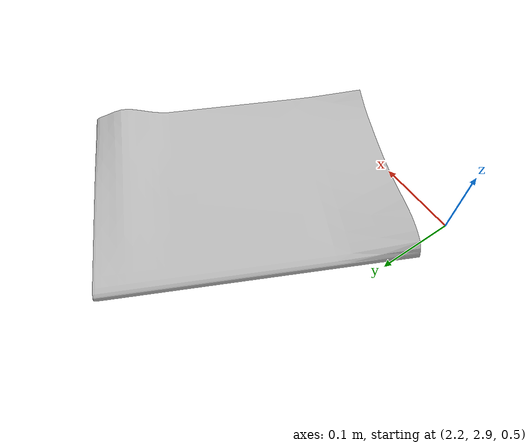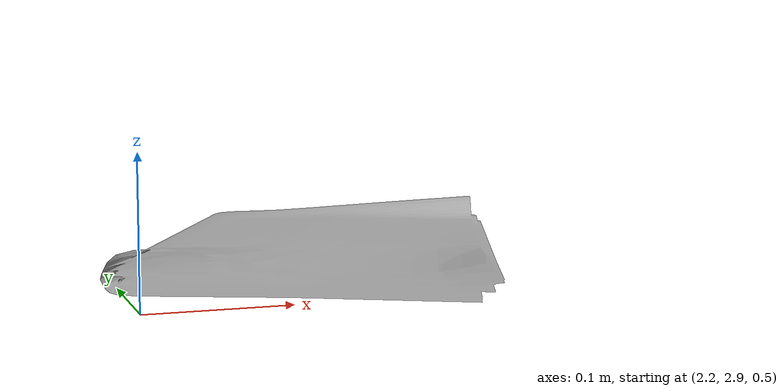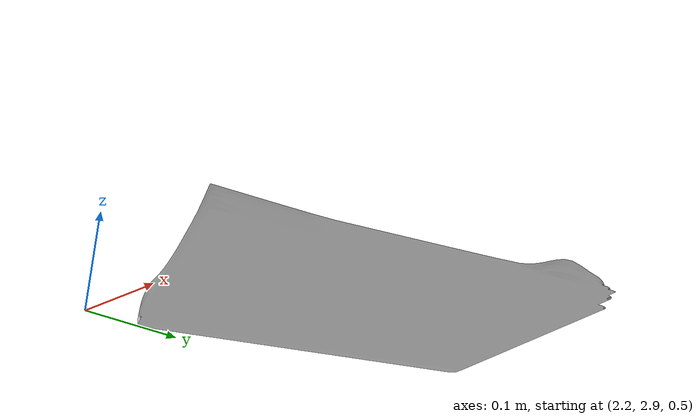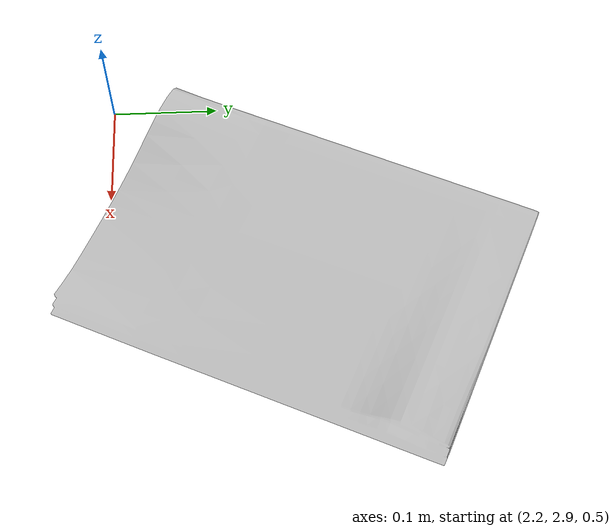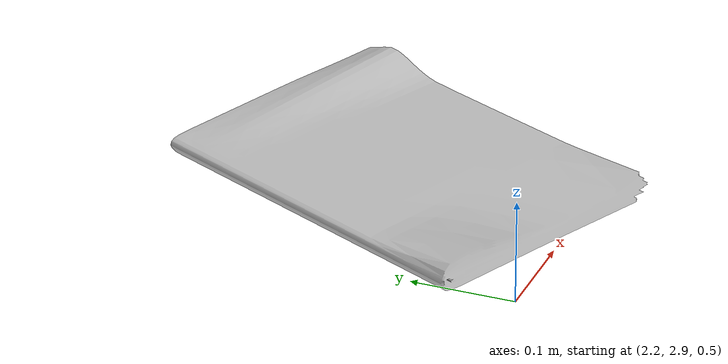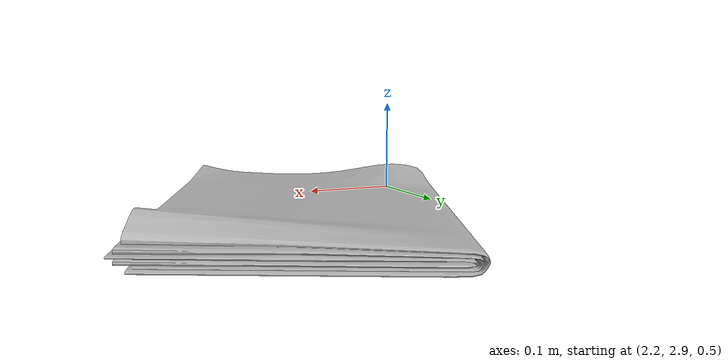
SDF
<?xml version="1.0" ?>
<sdf version="1.5">
  <model name="newspaper">
    <pose>3.93 3.06 0.5 0 0 -2.76</pose>
    <link name="link">
      <inertial>
	<mass>0.39</mass>
	<pose>1.4 -0.6 0.0 0 0 0</pose>
        <inertia>
          <ixx>0.00055575</ixx>
          <ixy>0</ixy>
          <ixz>0</ixz>
          <iyy>0.00055575</iyy>
          <iyz>0</iyz>
          <izz>0.0001755</izz>
	</inertia>
      </inertial>
      <collision name="collision">
        <geometry>
          <mesh>
            <uri>model://newspaper/meshes/newspaper.dae</uri>
          </mesh>
        </geometry>
        <surface>
          <friction>
            <ode>
              <mu>1.0</mu>
              <mu2>1.0</mu2>
            </ode>
          </friction>
          <contact>
            <ode>
              <kp>10000000.0</kp>
              <kd>1.0</kd>
              <min_depth>0.001</min_depth>
              <max_vel>0.1</max_vel>
            </ode>
          </contact>
        </surface>
      </collision>
      <visual name="visual">
        <geometry>
          <mesh>
            <uri>model://newspaper/meshes/newspaper.dae</uri>
          </mesh>
        </geometry>
      </visual>
    </link>
  </model>
</sdf>
